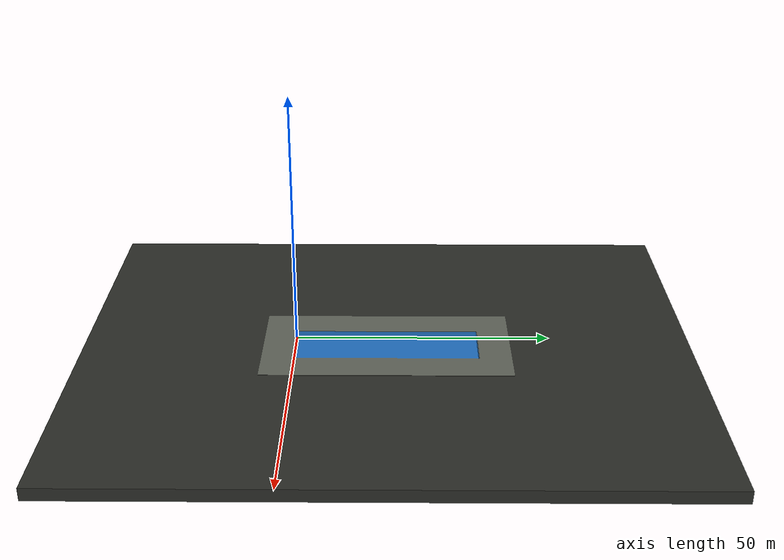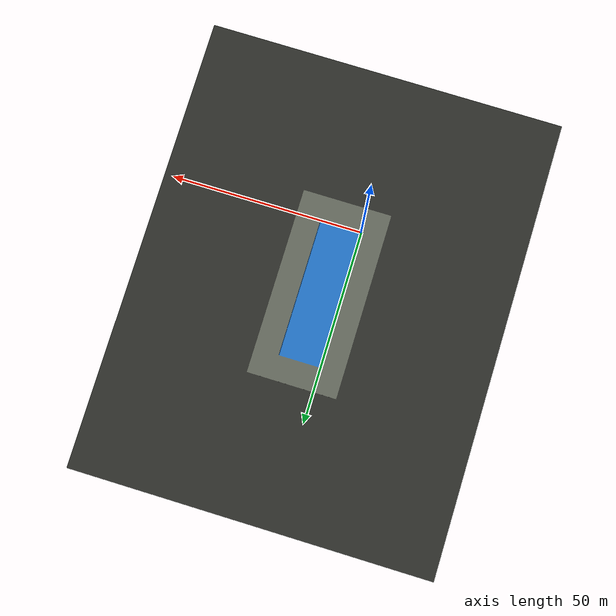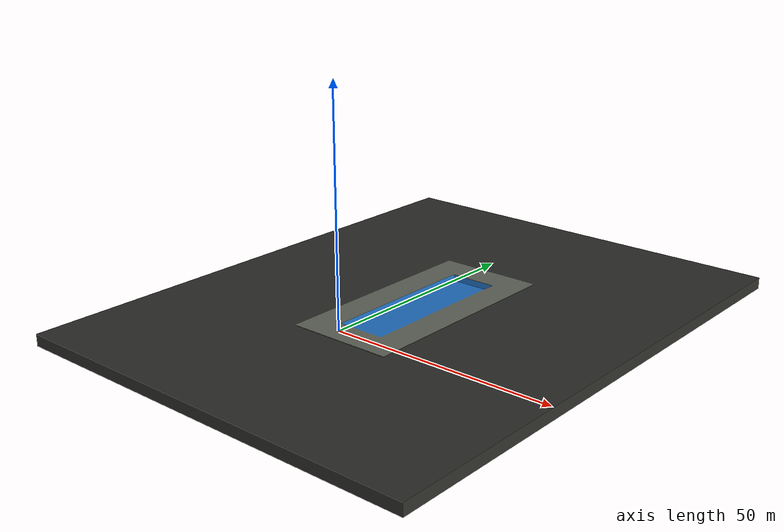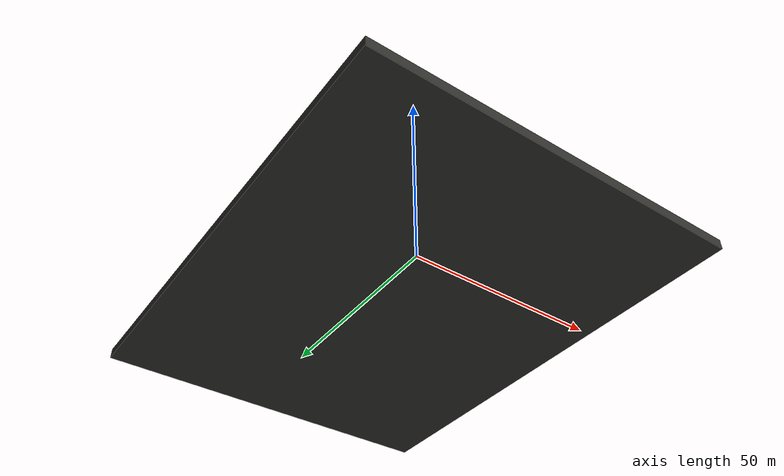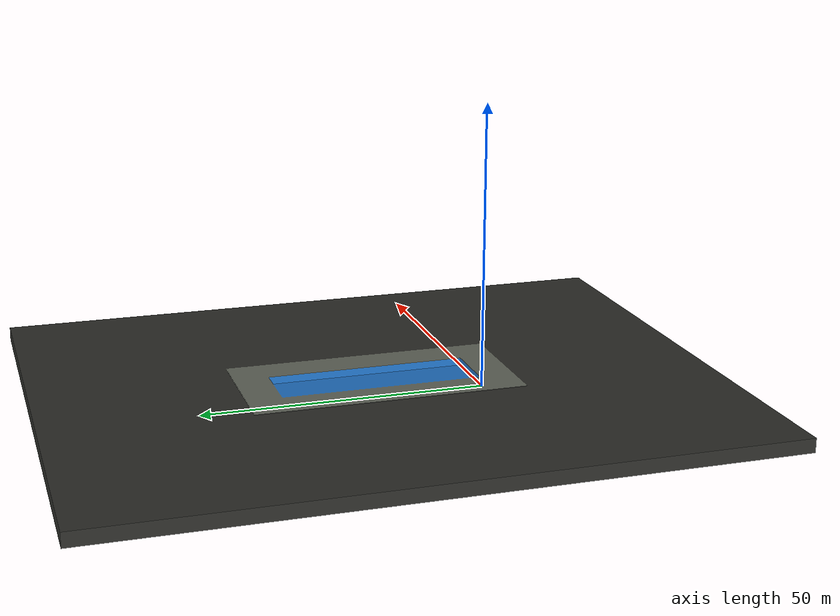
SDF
<?xml version="1.0" encoding="UTF-8"?>
<sdf version="1.6">
    <model name="pool">
        <pose>0 0 0 0 0 0</pose>
        <static>true</static>
        <link name="link">
            <visual name="visual_pool">
                <geometry>
                    <mesh>
                        <uri>meshes/pool.dae</uri>
                    </mesh>
                </geometry>
            </visual>

            <collision name="collision">
                <geometry>
                    <mesh>
                        <uri>meshes/pool.dae</uri>
                    </mesh>
                </geometry>
            </collision>
        </link>
    </model>
</sdf>
